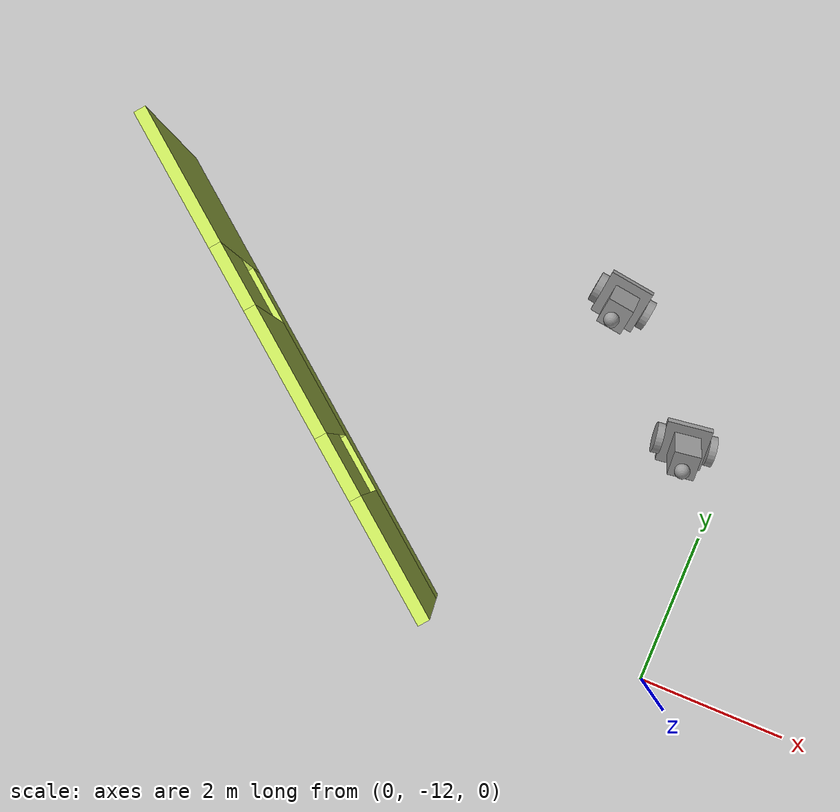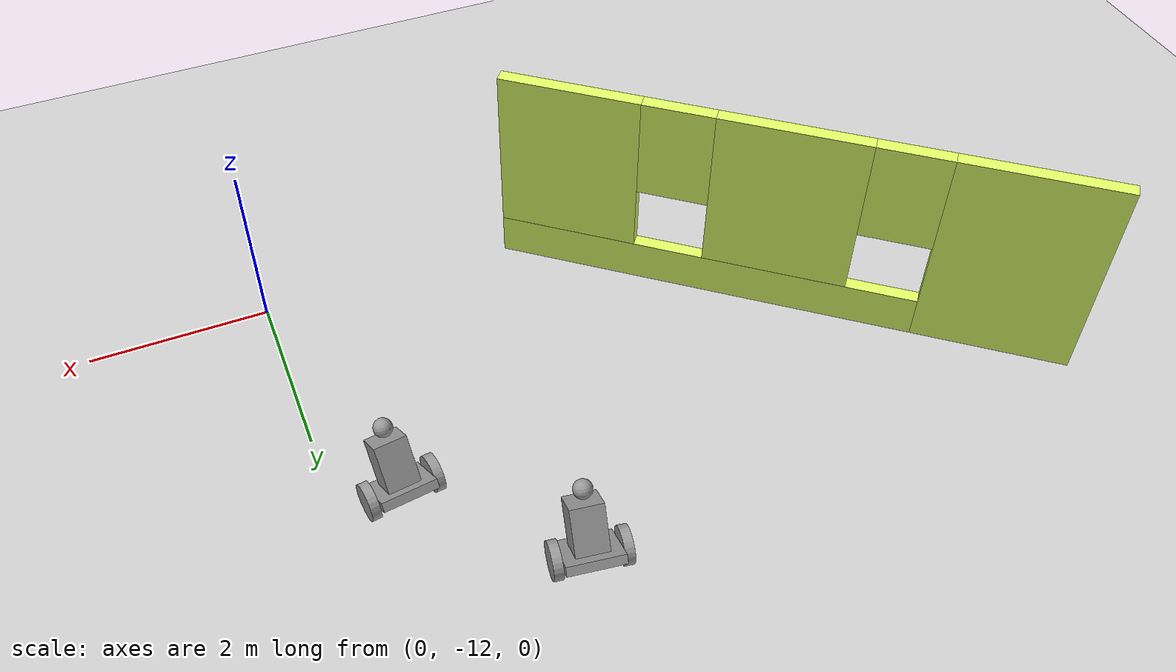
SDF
<sdf version="1.6">
 <world name="default">
  <model name="ground_plane">
   <static>1</static>
   <link name="link">
    <collision name="collision">
     <geometry><plane><normal>0 0 1</normal><size>100 100</size></plane></geometry>
     <surface>
      <contact><collide_bitmask>65535</collide_bitmask></contact>
      <friction><ode><mu>100</mu><mu2>50</mu2></ode></friction>
     </surface>
    </collision>
    <visual name="visual">
     <cast_shadows>0</cast_shadows>
     <geometry><plane><normal>0 0 1</normal><size>100 100</size></plane></geometry>
     <material>
      <script><uri>file://media/materials/scripts/gazebo.material</uri><name>Gazebo/Grey</name></script>
     </material>
    </visual>
   </link>
  </model>
  <model name="myBuilding">
   <pose>-0.01524 -2.0117 0 0 -0 0</pose>
   <link name="Wall_8">
    <pose>-5.48476 -7.9883 0 0 0 -0.674741</pose>
    <visual name="Wall_8_Visual_0">
     <pose>-2.41045 0 1.25 0 -0 0</pose>
     <geometry><box><size>1.73221 0.15 2.5</size></box></geometry>
     <material>
      <script><uri>file://media/materials/scripts/gazebo.material</uri><name>Gazebo/Grey</name></script>
      <ambient>0.870588 1 0.4 1</ambient>
     </material>
     <meta><layer>0</layer></meta>
    </visual>
    <collision name="Wall_8_Collision_0">
     <geometry><box><size>1.73221 0.15 2.5</size></box></geometry>
     <pose>-2.41045 0 1.25 0 -0 0</pose>
    </collision>
    <visual name="Wall_8_Visual_1">
     <pose>0.866107 0 0.25 0 -0 0</pose>
     <geometry><box><size>4.82091 0.15 0.5</size></box></geometry>
     <material>
      <script><uri>file://media/materials/scripts/gazebo.material</uri><name>Gazebo/Grey</name></script>
      <ambient>0.870588 1 0.4 1</ambient>
     </material>
     <meta><layer>0</layer></meta>
    </visual>
    <collision name="Wall_8_Collision_1">
     <geometry><box><size>4.82091 0.15 0.5</size></box></geometry>
     <pose>0.866107 0 0.25 0 -0 0</pose>
    </collision>
    <visual name="Wall_8_Visual_2">
     <pose>0.073887 0 1.5 0 -0 0</pose>
     <geometry><box><size>1.63647 0.15 2</size></box></geometry>
     <material>
      <script><uri>file://media/materials/scripts/gazebo.material</uri><name>Gazebo/Grey</name></script>
      <ambient>0.870588 1 0.4 1</ambient>
     </material>
     <meta><layer>0</layer></meta>
    </visual>
    <collision name="Wall_8_Collision_2">
     <geometry><box><size>1.63647 0.15 2</size></box></geometry>
     <pose>0.073887 0 1.5 0 -0 0</pose>
    </collision>
    <visual name="Wall_8_Visual_3">
     <pose>2.48434 0 1.5 0 -0 0</pose>
     <geometry><box><size>1.58444 0.15 2</size></box></geometry>
     <material>
      <script><uri>file://media/materials/scripts/gazebo.material</uri><name>Gazebo/Grey</name></script>
      <ambient>0.870588 1 0.4 1</ambient>
     </material>
     <meta><layer>0</layer></meta>
    </visual>
    <collision name="Wall_8_Collision_3">
     <geometry><box><size>1.58444 0.15 2</size></box></geometry>
     <pose>2.48434 0 1.5 0 -0 0</pose>
    </collision>
    <visual name="Wall_8_Visual_4">
     <pose>-1.14435 0 1.9 0 -0 0</pose>
     <geometry><box><size>0.8 0.15 1.2</size></box></geometry>
     <material>
      <script><uri>file://media/materials/scripts/gazebo.material</uri><name>Gazebo/Grey</name></script>
      <ambient>0.870588 1 0.4 1</ambient>
     </material>
     <meta><layer>0</layer></meta>
    </visual>
    <collision name="Wall_8_Collision_4">
     <geometry><box><size>0.8 0.15 1.2</size></box></geometry>
     <pose>-1.14435 0 1.9 0 -0 0</pose>
    </collision>
    <visual name="Wall_8_Visual_5">
     <pose>1.29212 0 1.9 0 -0 0</pose>
     <geometry><box><size>0.8 0.15 1.2</size></box></geometry>
     <material>
      <script><uri>file://media/materials/scripts/gazebo.material</uri><name>Gazebo/Grey</name></script>
      <ambient>0.870588 1 0.4 1</ambient>
     </material>
     <meta><layer>0</layer></meta>
    </visual>
    <collision name="Wall_8_Collision_5">
     <geometry><box><size>0.8 0.15 1.2</size></box></geometry>
     <pose>1.29212 0 1.9 0 -0 0</pose>
    </collision>
   </link>
   <static>1</static>
  </model>
  <model name="serviceRobot">
   <link name="link_1">
    <pose>-0.266493 0.05477 -0.125 0 -0 0</pose>
    <inertial>
     <mass>1</mass>
     <inertia>
      <ixx>0.166667</ixx>
      <ixy>0</ixy>
      <ixz>0</ixz>
      <iyy>0.166667</iyy>
      <iyz>0</iyz>
      <izz>0.166667</izz>
     </inertia>
    </inertial>
    <visual name="visual">
     <geometry><box><size>0.6 0.6 0.1</size></box></geometry>
     <material>
      <lighting>1</lighting>
      <script><uri>file://media/materials/scripts/gazebo.material</uri><name>Gazebo/Grey</name></script>
      <shader type="pixel"><normal_map>__default__</normal_map></shader>
      <ambient>0.3 0.3 0.3 1</ambient>
      <diffuse>0.7 0.7 0.7 1</diffuse>
      <specular>0.01 0.01 0.01 1</specular>
      <emissive>0 0 0 1</emissive>
     </material>
    </visual>
    <collision name="collision">
     <geometry><box><size>0.6 0.6 0.1</size></box></geometry>
     <surface>
      <friction>
       <ode><mu>1</mu><mu2>1</mu2><fdir1>0 0 0</fdir1><slip1>0</slip1><slip2>0</slip2></ode>
       <torsional>
        <coefficient>1</coefficient>
        <patch_radius>0</patch_radius>
        <surface_radius>0</surface_radius>
        <use_patch_radius>1</use_patch_radius>
        <ode><slip>0</slip></ode>
       </torsional>
      </friction>
      <bounce><restitution_coefficient>0</restitution_coefficient><threshold>1e+06</threshold></bounce>
      <contact>
       <collide_without_contact>0</collide_without_contact>
       <collide_without_contact_bitmask>1</collide_without_contact_bitmask>
       <collide_bitmask>1</collide_bitmask>
       <ode>
        <soft_cfm>0</soft_cfm>
        <soft_erp>0.2</soft_erp>
        <kp>1e+13</kp>
        <kd>1</kd>
        <max_vel>0.01</max_vel>
        <min_depth>0</min_depth>
       </ode>
       <bullet>
        <split_impulse>1</split_impulse>
        <split_impulse_penetration_threshold>-0.01</split_impulse_penetration_threshold>
        <soft_cfm>0</soft_cfm>
        <soft_erp>0.2</soft_erp>
        <kp>1e+13</kp>
        <kd>1</kd>
       </bullet>
      </contact>
     </surface>
    </collision>
   </link>
   <link name="link_2">
    <pose>0.084348 0.05477 -0.125 3.14159 1.56659 3.14159</pose>
    <inertial>
     <mass>1</mass>
     <inertia><ixx>0.145833</ixx><ixy>0</ixy><ixz>0</ixz><iyy>0.145833</iyy><iyz>0</iyz><izz>0.125</izz></inertia>
    </inertial>
    <visual name="visual">
     <geometry><cylinder><radius>0.2</radius><length>0.1</length></cylinder></geometry>
     <material>
      <lighting>1</lighting>
      <script><uri>file://media/materials/scripts/gazebo.material</uri><name>Gazebo/Grey</name></script>
      <shader type="pixel"><normal_map>__default__</normal_map></shader>
      <ambient>0.3 0.3 0.3 1</ambient>
      <diffuse>0.7 0.7 0.7 1</diffuse>
      <specular>0.01 0.01 0.01 1</specular>
      <emissive>0 0 0 1</emissive>
     </material>
    </visual>
    <collision name="collision">
     <geometry><cylinder><radius>0.2</radius><length>0.1</length></cylinder></geometry>
     <surface>
      <friction>
       <ode><mu>1</mu><mu2>1</mu2><fdir1>0 0 0</fdir1><slip1>0</slip1><slip2>0</slip2></ode>
       <torsional>
        <coefficient>1</coefficient>
        <patch_radius>0</patch_radius>
        <surface_radius>0</surface_radius>
        <use_patch_radius>1</use_patch_radius>
        <ode><slip>0</slip></ode>
       </torsional>
      </friction>
      <bounce><restitution_coefficient>0</restitution_coefficient><threshold>1e+06</threshold></bounce>
      <contact>
       <collide_without_contact>0</collide_without_contact>
       <collide_without_contact_bitmask>1</collide_without_contact_bitmask>
       <collide_bitmask>1</collide_bitmask>
       <ode>
        <soft_cfm>0</soft_cfm>
        <soft_erp>0.2</soft_erp>
        <kp>1e+13</kp>
        <kd>1</kd>
        <max_vel>0.01</max_vel>
        <min_depth>0</min_depth>
       </ode>
       <bullet>
        <split_impulse>1</split_impulse>
        <split_impulse_penetration_threshold>-0.01</split_impulse_penetration_threshold>
        <soft_cfm>0</soft_cfm>
        <soft_erp>0.2</soft_erp>
        <kp>1e+13</kp>
        <kd>1</kd>
       </bullet>
      </contact>
     </surface>
    </collision>
   </link>
   <link name="link_2_clone">
    <pose>-0.617334 0.05477 -0.125 3.14159 1.56659 3.14159</pose>
    <inertial>
     <mass>1</mass>
     <inertia><ixx>0.145833</ixx><ixy>0</ixy><ixz>0</ixz><iyy>0.145833</iyy><iyz>0</iyz><izz>0.125</izz></inertia>
    </inertial>
    <visual name="visual">
     <geometry><cylinder><radius>0.2</radius><length>0.1</length></cylinder></geometry>
     <material>
      <lighting>1</lighting>
      <script><uri>file://media/materials/scripts/gazebo.material</uri><name>Gazebo/Grey</name></script>
      <shader type="pixel"><normal_map>__default__</normal_map></shader>
      <ambient>0.3 0.3 0.3 1</ambient>
      <diffuse>0.7 0.7 0.7 1</diffuse>
      <specular>0.01 0.01 0.01 1</specular>
      <emissive>0 0 0 1</emissive>
     </material>
    </visual>
    <collision name="collision">
     <geometry><cylinder><radius>0.2</radius><length>0.1</length></cylinder></geometry>
     <surface>
      <friction>
       <ode><mu>1</mu><mu2>1</mu2><fdir1>0 0 0</fdir1><slip1>0</slip1><slip2>0</slip2></ode>
       <torsional>
        <coefficient>1</coefficient>
        <patch_radius>0</patch_radius>
        <surface_radius>0</surface_radius>
        <use_patch_radius>1</use_patch_radius>
        <ode><slip>0</slip></ode>
       </torsional>
      </friction>
      <bounce><restitution_coefficient>0</restitution_coefficient><threshold>1e+06</threshold></bounce>
      <contact>
       <collide_without_contact>0</collide_without_contact>
       <collide_without_contact_bitmask>1</collide_without_contact_bitmask>
       <collide_bitmask>1</collide_bitmask>
       <ode>
        <soft_cfm>0</soft_cfm>
        <soft_erp>0.2</soft_erp>
        <kp>1e+13</kp>
        <kd>1</kd>
        <max_vel>0.01</max_vel>
        <min_depth>0</min_depth>
       </ode>
       <bullet>
        <split_impulse>1</split_impulse>
        <split_impulse_penetration_threshold>-0.01</split_impulse_penetration_threshold>
        <soft_cfm>0</soft_cfm>
        <soft_erp>0.2</soft_erp>
        <kp>1e+13</kp>
        <kd>1</kd>
       </bullet>
      </contact>
     </surface>
    </collision>
   </link>
   <link name="link_3">
    <pose>-0.266493 0.05477 0.175 0 -0 0</pose>
    <inertial>
     <mass>1</mass>
     <inertia>
      <ixx>0.166667</ixx>
      <ixy>0</ixy>
      <ixz>0</ixz>
      <iyy>0.166667</iyy>
      <iyz>0</iyz>
      <izz>0.166667</izz>
     </inertia>
    </inertial>
    <visual name="visual">
     <geometry><box><size>0.35 0.35 0.5</size></box></geometry>
     <material>
      <lighting>1</lighting>
      <script><uri>file://media/materials/scripts/gazebo.material</uri><name>Gazebo/Grey</name></script>
      <shader type="pixel"><normal_map>__default__</normal_map></shader>
      <ambient>0.3 0.3 0.3 1</ambient>
      <diffuse>0.7 0.7 0.7 1</diffuse>
      <specular>0.01 0.01 0.01 1</specular>
      <emissive>0 0 0 1</emissive>
     </material>
    </visual>
    <collision name="collision">
     <geometry><box><size>0.35 0.35 0.5</size></box></geometry>
     <surface>
      <friction>
       <ode><mu>1</mu><mu2>1</mu2><fdir1>0 0 0</fdir1><slip1>0</slip1><slip2>0</slip2></ode>
       <torsional>
        <coefficient>1</coefficient>
        <patch_radius>0</patch_radius>
        <surface_radius>0</surface_radius>
        <use_patch_radius>1</use_patch_radius>
        <ode><slip>0</slip></ode>
       </torsional>
      </friction>
      <bounce><restitution_coefficient>0</restitution_coefficient><threshold>1e+06</threshold></bounce>
      <contact>
       <collide_without_contact>0</collide_without_contact>
       <collide_without_contact_bitmask>1</collide_without_contact_bitmask>
       <collide_bitmask>1</collide_bitmask>
       <ode>
        <soft_cfm>0</soft_cfm>
        <soft_erp>0.2</soft_erp>
        <kp>1e+13</kp>
        <kd>1</kd>
        <max_vel>0.01</max_vel>
        <min_depth>0</min_depth>
       </ode>
       <bullet>
        <split_impulse>1</split_impulse>
        <split_impulse_penetration_threshold>-0.01</split_impulse_penetration_threshold>
        <soft_cfm>0</soft_cfm>
        <soft_erp>0.2</soft_erp>
        <kp>1e+13</kp>
        <kd>1</kd>
       </bullet>
      </contact>
     </surface>
    </collision>
   </link>
   <link name="link_4">
    <pose>-0.286493 0.03477 0.525 0 -0 0</pose>
    <inertial>
     <mass>1</mass>
     <inertia><ixx>0.1</ixx><ixy>0</ixy><ixz>0</ixz><iyy>0.1</iyy><iyz>0</iyz><izz>0.1</izz></inertia>
    </inertial>
    <visual name="visual">
     <geometry><sphere><radius>0.1</radius></sphere></geometry>
     <material>
      <lighting>1</lighting>
      <script><uri>file://media/materials/scripts/gazebo.material</uri><name>Gazebo/Grey</name></script>
      <shader type="pixel"><normal_map>__default__</normal_map></shader>
      <ambient>0.3 0.3 0.3 1</ambient>
      <diffuse>0.7 0.7 0.7 1</diffuse>
      <specular>0.01 0.01 0.01 1</specular>
      <emissive>0 0 0 1</emissive>
     </material>
    </visual>
    <collision name="collision">
     <geometry><sphere><radius>0.1</radius></sphere></geometry>
     <surface>
      <friction>
       <ode><mu>1</mu><mu2>1</mu2><fdir1>0 0 0</fdir1><slip1>0</slip1><slip2>0</slip2></ode>
       <torsional>
        <coefficient>1</coefficient>
        <patch_radius>0</patch_radius>
        <surface_radius>0</surface_radius>
        <use_patch_radius>1</use_patch_radius>
        <ode><slip>0</slip></ode>
       </torsional>
      </friction>
      <bounce><restitution_coefficient>0</restitution_coefficient><threshold>1e+06</threshold></bounce>
      <contact>
       <collide_without_contact>0</collide_without_contact>
       <collide_without_contact_bitmask>1</collide_without_contact_bitmask>
       <collide_bitmask>1</collide_bitmask>
       <ode>
        <soft_cfm>0</soft_cfm>
        <soft_erp>0.2</soft_erp>
        <kp>1e+13</kp>
        <kd>1</kd>
        <max_vel>0.01</max_vel>
        <min_depth>0</min_depth>
       </ode>
       <bullet>
        <split_impulse>1</split_impulse>
        <split_impulse_penetration_threshold>-0.01</split_impulse_penetration_threshold>
        <soft_cfm>0</soft_cfm>
        <soft_erp>0.2</soft_erp>
        <kp>1e+13</kp>
        <kd>1</kd>
       </bullet>
      </contact>
     </surface>
    </collision>
   </link>
   <model name="metal_peg">
    <link name="link">
     <pose>0 0 0.031 0 -0 0</pose>
     <inertial>
      <mass>0.0121</mass>
      <inertia>
       <ixx>3.90898e-06</ixx>
       <ixy>0</ixy>
       <ixz>0</ixz>
       <iyy>3.90898e-06</iyy>
       <iyz>0</iyz>
       <izz>6.58845e-08</izz>
      </inertia>
     </inertial>
     <collision name="collision">
      <geometry><cylinder><radius>0.0033</radius><length>0.062</length></cylinder></geometry>
      <surface>
       <contact>
        <poissons_ratio>0.305</poissons_ratio>
        <elastic_modulus>2e+11</elastic_modulus>
        <ode><kp>100000</kp><kd>100</kd><max_vel>100</max_vel><min_depth>0.001</min_depth></ode>
       </contact>
       <friction>
        <torsional>
         <coefficient>1</coefficient>
         <use_patch_radius>0</use_patch_radius>
         <surface_radius>0.01</surface_radius>
        </torsional>
       </friction>
      </surface>
     </collision>
     <visual name="visual">
      <geometry><cylinder><radius>0.0033</radius><length>0.062</length></cylinder></geometry>
      <material>
       <script><uri>file://media/materials/scripts/gazebo.material</uri><name>Gazebo/Grey</name></script>
      </material>
     </visual>
    </link>
    <pose>1.41901 -0.439429 -0.325 0 -0 0</pose>
   </model>
   <joint name="link_1_JOINT_0" type="revolute">
    <parent>link_1</parent>
    <child>link_2_clone</child>
    <axis>
     <xyz>0 0 1</xyz>
     <use_parent_model_frame>0</use_parent_model_frame>
     <limit>
      <lower>-1.79769e+308</lower>
      <upper>1.79769e+308</upper>
      <effort>-1</effort>
      <velocity>-1</velocity>
     </limit>
     <dynamics>
      <spring_reference>0</spring_reference>
      <spring_stiffness>0</spring_stiffness>
      <damping>0</damping>
     </dynamics>
    </axis>
    <physics>
     <ode><limit><cfm>0</cfm><erp>0.2</erp></limit><suspension><cfm>0</cfm><erp>0.2</erp></suspension></ode>
    </physics>
   </joint>
   <joint name="link_1_JOINT_1" type="revolute">
    <parent>link_1</parent>
    <child>link_2</child>
    <axis>
     <xyz>0 0 1</xyz>
     <use_parent_model_frame>0</use_parent_model_frame>
     <limit>
      <lower>-1.79769e+308</lower>
      <upper>1.79769e+308</upper>
      <effort>-1</effort>
      <velocity>-1</velocity>
     </limit>
     <dynamics>
      <spring_reference>0</spring_reference>
      <spring_stiffness>0</spring_stiffness>
      <damping>0</damping>
     </dynamics>
    </axis>
    <physics>
     <ode><limit><cfm>0</cfm><erp>0.2</erp></limit><suspension><cfm>0</cfm><erp>0.2</erp></suspension></ode>
    </physics>
   </joint>
   <joint name="link_1_JOINT_2" type="fixed">
    <parent>link_1</parent>
    <child>link_3</child>
    <physics>
     <ode><limit><cfm>0</cfm><erp>0.2</erp></limit><suspension><cfm>0</cfm><erp>0.2</erp></suspension></ode>
    </physics>
   </joint>
   <joint name="link_3_JOINT_3" type="fixed">
    <parent>link_3</parent>
    <child>link_4</child>
    <physics>
     <ode><limit><cfm>0</cfm><erp>0.2</erp></limit><suspension><cfm>0</cfm><erp>0.2</erp></suspension></ode>
    </physics>
   </joint>
   <static>0</static>
   <pose>-1.88149 -7.67718 0.277752 0.55325 -1e-06 -0.13415</pose>
  </model>
  <model name="serviceRobot_clone">
   <link name="link_1">
    <pose>-0.266493 0.05477 -0.125 0 -0 0</pose>
    <inertial>
     <mass>1</mass>
     <inertia>
      <ixx>0.166667</ixx>
      <ixy>0</ixy>
      <ixz>0</ixz>
      <iyy>0.166667</iyy>
      <iyz>0</iyz>
      <izz>0.166667</izz>
     </inertia>
    </inertial>
    <visual name="visual">
     <geometry><box><size>0.6 0.6 0.1</size></box></geometry>
     <material>
      <lighting>1</lighting>
      <script><uri>file://media/materials/scripts/gazebo.material</uri><name>Gazebo/Grey</name></script>
      <shader type="pixel"><normal_map>__default__</normal_map></shader>
      <ambient>0.3 0.3 0.3 1</ambient>
      <diffuse>0.7 0.7 0.7 1</diffuse>
      <specular>0.01 0.01 0.01 1</specular>
      <emissive>0 0 0 1</emissive>
     </material>
    </visual>
    <collision name="collision">
     <geometry><box><size>0.6 0.6 0.1</size></box></geometry>
     <surface>
      <friction>
       <ode><mu>1</mu><mu2>1</mu2><fdir1>0 0 0</fdir1><slip1>0</slip1><slip2>0</slip2></ode>
       <torsional>
        <coefficient>1</coefficient>
        <patch_radius>0</patch_radius>
        <surface_radius>0</surface_radius>
        <use_patch_radius>1</use_patch_radius>
        <ode><slip>0</slip></ode>
       </torsional>
      </friction>
      <bounce><restitution_coefficient>0</restitution_coefficient><threshold>1e+06</threshold></bounce>
      <contact>
       <collide_without_contact>0</collide_without_contact>
       <collide_without_contact_bitmask>1</collide_without_contact_bitmask>
       <collide_bitmask>1</collide_bitmask>
       <ode>
        <soft_cfm>0</soft_cfm>
        <soft_erp>0.2</soft_erp>
        <kp>1e+13</kp>
        <kd>1</kd>
        <max_vel>0.01</max_vel>
        <min_depth>0</min_depth>
       </ode>
       <bullet>
        <split_impulse>1</split_impulse>
        <split_impulse_penetration_threshold>-0.01</split_impulse_penetration_threshold>
        <soft_cfm>0</soft_cfm>
        <soft_erp>0.2</soft_erp>
        <kp>1e+13</kp>
        <kd>1</kd>
       </bullet>
      </contact>
     </surface>
    </collision>
   </link>
   <link name="link_2">
    <pose>0.084348 0.05477 -0.125 3.14159 1.56659 3.14159</pose>
    <inertial>
     <mass>1</mass>
     <inertia><ixx>0.145833</ixx><ixy>0</ixy><ixz>0</ixz><iyy>0.145833</iyy><iyz>0</iyz><izz>0.125</izz></inertia>
    </inertial>
    <visual name="visual">
     <geometry><cylinder><radius>0.2</radius><length>0.1</length></cylinder></geometry>
     <material>
      <lighting>1</lighting>
      <script><uri>file://media/materials/scripts/gazebo.material</uri><name>Gazebo/Grey</name></script>
      <shader type="pixel"><normal_map>__default__</normal_map></shader>
      <ambient>0.3 0.3 0.3 1</ambient>
      <diffuse>0.7 0.7 0.7 1</diffuse>
      <specular>0.01 0.01 0.01 1</specular>
      <emissive>0 0 0 1</emissive>
     </material>
    </visual>
    <collision name="collision">
     <geometry><cylinder><radius>0.2</radius><length>0.1</length></cylinder></geometry>
     <surface>
      <friction>
       <ode><mu>1</mu><mu2>1</mu2><fdir1>0 0 0</fdir1><slip1>0</slip1><slip2>0</slip2></ode>
       <torsional>
        <coefficient>1</coefficient>
        <patch_radius>0</patch_radius>
        <surface_radius>0</surface_radius>
        <use_patch_radius>1</use_patch_radius>
        <ode><slip>0</slip></ode>
       </torsional>
      </friction>
      <bounce><restitution_coefficient>0</restitution_coefficient><threshold>1e+06</threshold></bounce>
      <contact>
       <collide_without_contact>0</collide_without_contact>
       <collide_without_contact_bitmask>1</collide_without_contact_bitmask>
       <collide_bitmask>1</collide_bitmask>
       <ode>
        <soft_cfm>0</soft_cfm>
        <soft_erp>0.2</soft_erp>
        <kp>1e+13</kp>
        <kd>1</kd>
        <max_vel>0.01</max_vel>
        <min_depth>0</min_depth>
       </ode>
       <bullet>
        <split_impulse>1</split_impulse>
        <split_impulse_penetration_threshold>-0.01</split_impulse_penetration_threshold>
        <soft_cfm>0</soft_cfm>
        <soft_erp>0.2</soft_erp>
        <kp>1e+13</kp>
        <kd>1</kd>
       </bullet>
      </contact>
     </surface>
    </collision>
   </link>
   <link name="link_2_clone">
    <pose>-0.617334 0.05477 -0.125 3.14159 1.56659 3.14159</pose>
    <inertial>
     <mass>1</mass>
     <inertia><ixx>0.145833</ixx><ixy>0</ixy><ixz>0</ixz><iyy>0.145833</iyy><iyz>0</iyz><izz>0.125</izz></inertia>
    </inertial>
    <visual name="visual">
     <geometry><cylinder><radius>0.2</radius><length>0.1</length></cylinder></geometry>
     <material>
      <lighting>1</lighting>
      <script><uri>file://media/materials/scripts/gazebo.material</uri><name>Gazebo/Grey</name></script>
      <shader type="pixel"><normal_map>__default__</normal_map></shader>
      <ambient>0.3 0.3 0.3 1</ambient>
      <diffuse>0.7 0.7 0.7 1</diffuse>
      <specular>0.01 0.01 0.01 1</specular>
      <emissive>0 0 0 1</emissive>
     </material>
    </visual>
    <collision name="collision">
     <geometry><cylinder><radius>0.2</radius><length>0.1</length></cylinder></geometry>
     <surface>
      <friction>
       <ode><mu>1</mu><mu2>1</mu2><fdir1>0 0 0</fdir1><slip1>0</slip1><slip2>0</slip2></ode>
       <torsional>
        <coefficient>1</coefficient>
        <patch_radius>0</patch_radius>
        <surface_radius>0</surface_radius>
        <use_patch_radius>1</use_patch_radius>
        <ode><slip>0</slip></ode>
       </torsional>
      </friction>
      <bounce><restitution_coefficient>0</restitution_coefficient><threshold>1e+06</threshold></bounce>
      <contact>
       <collide_without_contact>0</collide_without_contact>
       <collide_without_contact_bitmask>1</collide_without_contact_bitmask>
       <collide_bitmask>1</collide_bitmask>
       <ode>
        <soft_cfm>0</soft_cfm>
        <soft_erp>0.2</soft_erp>
        <kp>1e+13</kp>
        <kd>1</kd>
        <max_vel>0.01</max_vel>
        <min_depth>0</min_depth>
       </ode>
       <bullet>
        <split_impulse>1</split_impulse>
        <split_impulse_penetration_threshold>-0.01</split_impulse_penetration_threshold>
        <soft_cfm>0</soft_cfm>
        <soft_erp>0.2</soft_erp>
        <kp>1e+13</kp>
        <kd>1</kd>
       </bullet>
      </contact>
     </surface>
    </collision>
   </link>
   <link name="link_3">
    <pose>-0.266493 0.05477 0.175 0 -0 0</pose>
    <inertial>
     <mass>1</mass>
     <inertia>
      <ixx>0.166667</ixx>
      <ixy>0</ixy>
      <ixz>0</ixz>
      <iyy>0.166667</iyy>
      <iyz>0</iyz>
      <izz>0.166667</izz>
     </inertia>
    </inertial>
    <visual name="visual">
     <geometry><box><size>0.35 0.35 0.5</size></box></geometry>
     <material>
      <lighting>1</lighting>
      <script><uri>file://media/materials/scripts/gazebo.material</uri><name>Gazebo/Grey</name></script>
      <shader type="pixel"><normal_map>__default__</normal_map></shader>
      <ambient>0.3 0.3 0.3 1</ambient>
      <diffuse>0.7 0.7 0.7 1</diffuse>
      <specular>0.01 0.01 0.01 1</specular>
      <emissive>0 0 0 1</emissive>
     </material>
    </visual>
    <collision name="collision">
     <geometry><box><size>0.35 0.35 0.5</size></box></geometry>
     <surface>
      <friction>
       <ode><mu>1</mu><mu2>1</mu2><fdir1>0 0 0</fdir1><slip1>0</slip1><slip2>0</slip2></ode>
       <torsional>
        <coefficient>1</coefficient>
        <patch_radius>0</patch_radius>
        <surface_radius>0</surface_radius>
        <use_patch_radius>1</use_patch_radius>
        <ode><slip>0</slip></ode>
       </torsional>
      </friction>
      <bounce><restitution_coefficient>0</restitution_coefficient><threshold>1e+06</threshold></bounce>
      <contact>
       <collide_without_contact>0</collide_without_contact>
       <collide_without_contact_bitmask>1</collide_without_contact_bitmask>
       <collide_bitmask>1</collide_bitmask>
       <ode>
        <soft_cfm>0</soft_cfm>
        <soft_erp>0.2</soft_erp>
        <kp>1e+13</kp>
        <kd>1</kd>
        <max_vel>0.01</max_vel>
        <min_depth>0</min_depth>
       </ode>
       <bullet>
        <split_impulse>1</split_impulse>
        <split_impulse_penetration_threshold>-0.01</split_impulse_penetration_threshold>
        <soft_cfm>0</soft_cfm>
        <soft_erp>0.2</soft_erp>
        <kp>1e+13</kp>
        <kd>1</kd>
       </bullet>
      </contact>
     </surface>
    </collision>
   </link>
   <link name="link_4">
    <pose>-0.286493 0.03477 0.525 0 -0 0</pose>
    <inertial>
     <mass>1</mass>
     <inertia><ixx>0.1</ixx><ixy>0</ixy><ixz>0</ixz><iyy>0.1</iyy><iyz>0</iyz><izz>0.1</izz></inertia>
    </inertial>
    <visual name="visual">
     <geometry><sphere><radius>0.1</radius></sphere></geometry>
     <material>
      <lighting>1</lighting>
      <script><uri>file://media/materials/scripts/gazebo.material</uri><name>Gazebo/Grey</name></script>
      <shader type="pixel"><normal_map>__default__</normal_map></shader>
      <ambient>0.3 0.3 0.3 1</ambient>
      <diffuse>0.7 0.7 0.7 1</diffuse>
      <specular>0.01 0.01 0.01 1</specular>
      <emissive>0 0 0 1</emissive>
     </material>
    </visual>
    <collision name="collision">
     <geometry><sphere><radius>0.1</radius></sphere></geometry>
     <surface>
      <friction>
       <ode><mu>1</mu><mu2>1</mu2><fdir1>0 0 0</fdir1><slip1>0</slip1><slip2>0</slip2></ode>
       <torsional>
        <coefficient>1</coefficient>
        <patch_radius>0</patch_radius>
        <surface_radius>0</surface_radius>
        <use_patch_radius>1</use_patch_radius>
        <ode><slip>0</slip></ode>
       </torsional>
      </friction>
      <bounce><restitution_coefficient>0</restitution_coefficient><threshold>1e+06</threshold></bounce>
      <contact>
       <collide_without_contact>0</collide_without_contact>
       <collide_without_contact_bitmask>1</collide_without_contact_bitmask>
       <collide_bitmask>1</collide_bitmask>
       <ode>
        <soft_cfm>0</soft_cfm>
        <soft_erp>0.2</soft_erp>
        <kp>1e+13</kp>
        <kd>1</kd>
        <max_vel>0.01</max_vel>
        <min_depth>0</min_depth>
       </ode>
       <bullet>
        <split_impulse>1</split_impulse>
        <split_impulse_penetration_threshold>-0.01</split_impulse_penetration_threshold>
        <soft_cfm>0</soft_cfm>
        <soft_erp>0.2</soft_erp>
        <kp>1e+13</kp>
        <kd>1</kd>
       </bullet>
      </contact>
     </surface>
    </collision>
   </link>
   <model name="metal_peg">
    <link name="link">
     <pose>0 0 0.031 0 -0 0</pose>
     <inertial>
      <mass>0.0121</mass>
      <inertia>
       <ixx>3.90898e-06</ixx>
       <ixy>0</ixy>
       <ixz>0</ixz>
       <iyy>3.90898e-06</iyy>
       <iyz>0</iyz>
       <izz>6.58845e-08</izz>
      </inertia>
     </inertial>
     <collision name="collision">
      <geometry><cylinder><radius>0.0033</radius><length>0.062</length></cylinder></geometry>
      <surface>
       <contact>
        <poissons_ratio>0.305</poissons_ratio>
        <elastic_modulus>2e+11</elastic_modulus>
        <ode><kp>100000</kp><kd>100</kd><max_vel>100</max_vel><min_depth>0.001</min_depth></ode>
       </contact>
       <friction>
        <torsional>
         <coefficient>1</coefficient>
         <use_patch_radius>0</use_patch_radius>
         <surface_radius>0.01</surface_radius>
        </torsional>
       </friction>
      </surface>
     </collision>
     <visual name="visual">
      <geometry><cylinder><radius>0.0033</radius><length>0.062</length></cylinder></geometry>
      <material>
       <script><uri>file://media/materials/scripts/gazebo.material</uri><name>Gazebo/Grey</name></script>
      </material>
     </visual>
    </link>
    <pose>1.41901 -0.439429 -0.325 0 -0 0</pose>
   </model>
   <joint name="link_1_JOINT_0" type="revolute">
    <parent>link_1</parent>
    <child>link_2_clone</child>
    <axis>
     <xyz>0 0 1</xyz>
     <use_parent_model_frame>0</use_parent_model_frame>
     <limit>
      <lower>-1.79769e+308</lower>
      <upper>1.79769e+308</upper>
      <effort>-1</effort>
      <velocity>-1</velocity>
     </limit>
     <dynamics>
      <spring_reference>0</spring_reference>
      <spring_stiffness>0</spring_stiffness>
      <damping>0</damping>
     </dynamics>
    </axis>
    <physics>
     <ode><limit><cfm>0</cfm><erp>0.2</erp></limit><suspension><cfm>0</cfm><erp>0.2</erp></suspension></ode>
    </physics>
   </joint>
   <joint name="link_1_JOINT_1" type="revolute">
    <parent>link_1</parent>
    <child>link_2</child>
    <axis>
     <xyz>0 0 1</xyz>
     <use_parent_model_frame>0</use_parent_model_frame>
     <limit>
      <lower>-1.79769e+308</lower>
      <upper>1.79769e+308</upper>
      <effort>-1</effort>
      <velocity>-1</velocity>
     </limit>
     <dynamics>
      <spring_reference>0</spring_reference>
      <spring_stiffness>0</spring_stiffness>
      <damping>0</damping>
     </dynamics>
    </axis>
    <physics>
     <ode><limit><cfm>0</cfm><erp>0.2</erp></limit><suspension><cfm>0</cfm><erp>0.2</erp></suspension></ode>
    </physics>
   </joint>
   <joint name="link_1_JOINT_2" type="fixed">
    <parent>link_1</parent>
    <child>link_3</child>
    <physics>
     <ode><limit><cfm>0</cfm><erp>0.2</erp></limit><suspension><cfm>0</cfm><erp>0.2</erp></suspension></ode>
    </physics>
   </joint>
   <joint name="link_3_JOINT_3" type="fixed">
    <parent>link_3</parent>
    <child>link_4</child>
    <physics>
     <ode><limit><cfm>0</cfm><erp>0.2</erp></limit><suspension><cfm>0</cfm><erp>0.2</erp></suspension></ode>
    </physics>
   </joint>
   <static>0</static>
   <pose>-0.402766 -9.01926 0.277752 0.553251 -1e-06 0.138398</pose>
  </model>
 </world>
</sdf>
